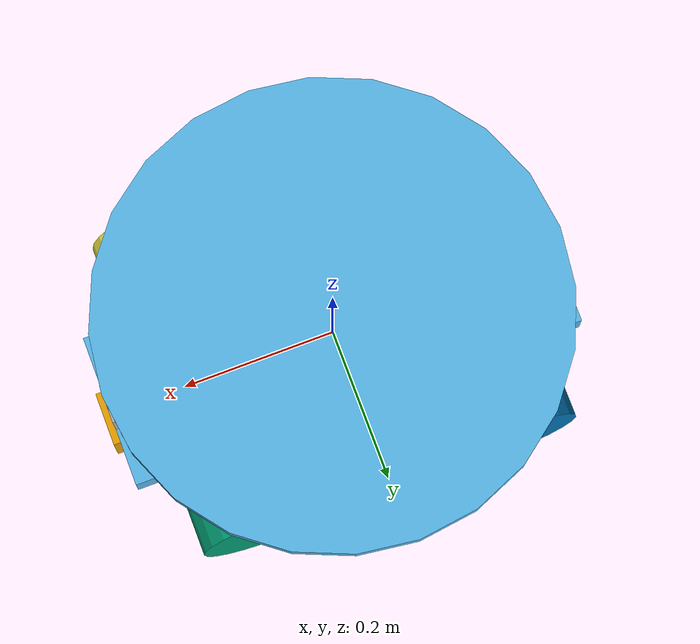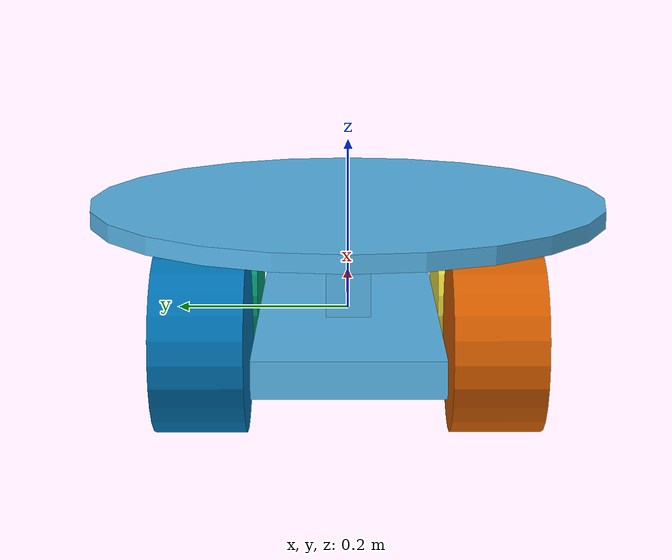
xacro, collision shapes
<?xml version='1.0'?>

<robot name="my_robot" xmlns:xacro="http://ros.org/wiki/xacro">

	<xacro:include filename="$(find my_robot)/urdf/my_robot.gazebo"/>

  <link name="robot_footprint"></link>

  <joint name="robot_footprint_joint" type="fixed">
    <origin xyz="0 0 0" rpy="0 0 0" />
    <parent link="robot_footprint"/>
    <child link="chassis" />
  </joint>
  <link name='chassis'>
    <pose>0 0 0.1 0 0 0</pose>
    <inertial>
      <mass value="35.0"/>
      <origin xyz="0.0 0 0" rpy=" 0 0 0"/>
      <inertia
          ixx="0.1" ixy="0" ixz="0"
          iyy="0.1" iyz="0"
          izz="0.1"
      />
    </inertial>
    <collision name='chassis_collision'>
      <origin xyz="0 0 0" rpy=" 0 0 0"/>
      <geometry>
        <box size="0.6 0.2 0.04"/>
      </geometry>
    </collision>
    <visual name='chassis_visual'>
      <origin xyz="0 0 0" rpy=" 0 0 0"/>
      <geometry>
        <box size="0.6 0.2 0.04"/>
      </geometry>
    </visual>
    <collision name='chassis_top_collision'>
      <origin xyz="0 0 0.065" rpy=" 0 0 0"/>
      <geometry>
        <box size="0.25 0.05 0.09"/>
      </geometry>
    </collision>
    <visual name='chassis_top_visual'>
      <origin xyz="0 0 0.065" rpy=" 0 0 0"/>
      <geometry>
        <box size="0.25 0.05 0.09"/>
      </geometry>
    </visual>
  </link>

	<!-- wheels -->
  <joint type="continuous" name="left_front_wheel_hinge">
    <origin xyz="0.15 0.16 0" rpy="0 0 0"/>
    <child link="left_front_wheel"/>
    <parent link="chassis"/>
    <axis xyz="0 1 0" rpy="0 0 0"/>
    <limit effort="10000" velocity="1000"/>
    <dynamics damping="1.0" friction="1.0"/>
  </joint>
  <transmission name="left_front_wheel_trans">
    <type>transmission_interface/SimpleTransmission</type>
    <joint name="left_front_wheel_hinge">
      <hardwareInterface>hardware_interface/EffortJointInterface</hardwareInterface>
		</joint>
    <actuator name="left_front_wheel_actuator">
      <hardwareInterface>EffortJointInterface</hardwareInterface>
      <mechanicalReduction>1</mechanicalReduction>
      </actuator>
  </transmission>
	<link name='left_front_wheel'>
    <collision name='left_front_wheel_collision'>
      <origin xyz="0 0 0" rpy=" 0 1.5707 1.5707"/>
      <geometry>
        <cylinder radius="0.1" length="0.1"/>
      </geometry>
    </collision>
    <visual name='left_front_wheel_visual'>
      <origin xyz="0 -0.02 0" rpy=" 0 1.5707 0"/>
      <geometry>
				<mesh filename="package://my_robot/meshes/mecanum.dae" scale="1 1 1"/>
      </geometry>
    </visual>
    <inertial>
      <mass value="10.0"/>
      <origin xyz="0.0 0 0" rpy=" 0 0 0"/>
      <inertia
          ixx="0.1" ixy="0" ixz="0"
          iyy="0.1" iyz="0"
          izz="0.1"
      />
    </inertial>
	</link>

  <joint type="continuous" name="right_front_wheel_hinge">
    <origin xyz="0.15 -0.16 0" rpy="0 0 0"/>
    <child link="right_front_wheel"/>
    <parent link="chassis"/>
    <axis xyz="0 1 0" rpy="0 0 0"/>
    <limit effort="10000" velocity="1000"/>
    <dynamics damping="1.0" friction="1.0"/>
  </joint>
  <transmission name="right_front_wheel_trans">
    <type>transmission_interface/SimpleTransmission</type>
    <joint name="right_front_wheel_hinge">
      <hardwareInterface>hardware_interface/EffortJointInterface</hardwareInterface>
		</joint>
    <actuator name="right_front_wheel_actuator">
      <hardwareInterface>EffortJointInterface</hardwareInterface>
      <mechanicalReduction>1</mechanicalReduction>
      </actuator>
  </transmission>
	<link name='right_front_wheel'>
    <collision name='right_front_wheel_collision'>
      <origin xyz="0 0 0" rpy=" 0 1.5707 1.5707"/>
      <geometry>
        <cylinder radius="0.1" length="0.1"/>
      </geometry>
    </collision>
    <visual name='right_front_wheel_visual'>
      <origin xyz="0 -0.02 0" rpy=" 0 -1.5707 0"/>
      <geometry>
				<mesh filename="package://my_robot/meshes/mecanum0.stl" scale="1 1 1"/>
      </geometry>
    </visual>
    <inertial>
      <mass value="10.0"/>
      <origin xyz="0.0 0 0" rpy=" 0 0 0"/>
      <inertia
          ixx="0.1" ixy="0" ixz="0"
          iyy="0.1" iyz="0"
          izz="0.1"
      />
    </inertial>
	</link>

  <joint type="continuous" name="left_back_wheel_hinge">
    <origin xyz="-0.15 0.16 0" rpy="0 0 0"/>
    <child link="left_back_wheel"/>
    <parent link="chassis"/>
    <axis xyz="0 1 0" rpy="0 0 0"/>
    <limit effort="10000" velocity="1000"/>
    <dynamics damping="1.0" friction="1.0"/>
  </joint>
  <transmission name="left_back_wheel_trans">
    <type>transmission_interface/SimpleTransmission</type>
    <joint name="left_back_wheel_hinge">
      <hardwareInterface>hardware_interface/EffortJointInterface</hardwareInterface>
		</joint>
    <actuator name="left_back_wheel_actuator">
      <hardwareInterface>EffortJointInterface</hardwareInterface>
      <mechanicalReduction>1</mechanicalReduction>
      </actuator>
  </transmission>
	<link name='left_back_wheel'>
    <collision name='left_back_wheel_collision'>
      <origin xyz="0 0 0" rpy=" 0 1.5707 1.5707"/>
      <geometry>
        <cylinder radius="0.1" length="0.1"/>
      </geometry>
    </collision>
    <visual name='left_back_wheel_visual'>
      <origin xyz="0 -0.02 0" rpy=" 0 1.5707 0"/>
      <geometry>
				<mesh filename="package://my_robot/meshes/mecanum0.stl" scale="1 1 1"/>
      </geometry>
    </visual>
    <inertial>
      <mass value="10.0"/>
      <origin xyz="0.0 0 0" rpy=" 0 0 0"/>
      <inertia
          ixx="0.1" ixy="0" ixz="0"
          iyy="0.1" iyz="0"
          izz="0.1"
      />
    </inertial>
	</link>

  <joint type="continuous" name="right_back_wheel_hinge">
    <origin xyz="-0.15 -0.16 0" rpy="0 0 0"/>
    <child link="right_back_wheel"/>
    <parent link="chassis"/>
    <axis xyz="0 1 0" rpy="0 0 0"/>
    <limit effort="10000" velocity="1000"/>
    <dynamics damping="1.0" friction="1.0"/>
  </joint>
  <transmission name="right_back_wheel_trans">
    <type>transmission_interface/SimpleTransmission</type>
    <joint name="right_back_wheel_hinge">
      <hardwareInterface>hardware_interface/EffortJointInterface</hardwareInterface>
		</joint>
    <actuator name="right_back_wheel_actuator">
      <hardwareInterface>EffortJointInterface</hardwareInterface>
      <mechanicalReduction>1</mechanicalReduction>
      </actuator>
  </transmission>
	<link name='right_back_wheel'>
    <collision name='right_back_wheel_collision'>
      <origin xyz="0 0 0" rpy=" 0 1.5707 1.5707"/>
      <geometry>
        <cylinder radius="0.1" length="0.1"/>
      </geometry>
    </collision>
    <visual name='right_back_wheel_visual'>
      <origin xyz="0 -0.02 0" rpy=" 0 -1.5707 0"/>
      <geometry>
				<mesh filename="package://my_robot/meshes/mecanum0.stl" scale="1 1 1"/>
      </geometry>
    </visual>
    <inertial>
      <mass value="10.0"/>
      <origin xyz="0.0 0 0" rpy=" 0 0 0"/>
      <inertia
          ixx="0.1" ixy="0" ixz="0"
          iyy="0.1" iyz="0"
          izz="0.1"
      />
    </inertial>
	</link>

	<!-- RGBD CAMERA SENSOR -->
  <joint type="fixed" name="camera_joint">
    <origin xyz="0.275 0.0 0.045" rpy="0 0 0"/>
    <child link="camera"/>
    <parent link="chassis"/>
    <axis xyz="0 1 0" rpy="0 0 0"/>
  </joint>
	<link name='camera'>
    <collision name='camera_collision'>
      <origin xyz="0 0 0" rpy=" 0 0 0"/>
      <geometry>
        <box size="0.05 0.05 0.05"/>
      </geometry>
    </collision>
    <visual name='camera_visual'>
      <origin xyz="0 0 0" rpy=" 0 0 0"/>
      <geometry>
        <box size="0.05 0.05 0.05"/>
      </geometry>
    </visual>
    <inertial>
      <mass value="0.1"/>
      <origin xyz="0.0 0 0" rpy=" 0 0 0"/>
      <inertia
          ixx="1e-6" ixy="0" ixz="0"
          iyy="0.000001" iyz="0"
          izz="0.000001"
      />
    </inertial>
	</link>

  <joint name="camera_optical_joint" type="fixed">
    <origin xyz="0 0 0" rpy="-1.5707 0 -1.5707"/>
    <parent link="camera"/>
    <child link="camera_optical"/>
    <axis xyz="0 0 0" rpy="0 0 0"/>
  </joint>
  <link name="camera_optical">
    <collision name='camera_optical_collision'>
      <origin xyz="0 0 0" rpy=" 0 0 0"/>
      <geometry>
        <box size="0.05 0.05 0.05"/>
      </geometry>
    </collision>
    <visual name='camera_optical_visual'>
      <origin xyz="0 0 0" rpy=" 0 0 0"/>
      <geometry>
        <box size="0.05 0.05 0.05"/>
      </geometry>
    </visual>
    <inertial>
      <mass value="0.1"/>
      <origin xyz="0.0 0 0" rpy=" 0 0 0"/>
      <inertia
          ixx="1e-6" ixy="0" ixz="0"
          iyy="0.000001" iyz="0"
          izz="0.000001"
      />
    </inertial>
  </link>

	<!-- LASER SENSOR -->
  <joint type="fixed" name="hokuyo_joint">
    <origin xyz="0.275 0 -0.055" rpy="0 0 0"/>
    <child link="hokuyo"/>
    <parent link="chassis"/>
    <axis xyz="0 1 0" rpy="0 0 0"/>
  </joint>
	<link name='hokuyo'>
    <collision name='hokuyo_collision'>
      <origin xyz="0 0 0" rpy=" 0 0 0"/>
      <geometry>
        <box size="0.07 0.07 0.07"/>
      </geometry>
    </collision>
    <visual name='hokuyo_visual'>
      <origin xyz="0 0 0" rpy=" 3.14159 0 0"/>
      <geometry>
				<mesh filename="package://my_robot/meshes/hokuyo.dae" />
      </geometry>
    </visual>
    <inertial>
      <mass value="1e-5"/>
      <origin xyz="0.0 0 0" rpy=" 0 0 0"/>
      <inertia
          ixx="1e-6" ixy="0" ixz="0"
          iyy="0.000001" iyz="0"
          izz="0.000001"
      />
    </inertial>
	</link>

	<!-- plate -->
  <joint type="fixed" name="plate_hinge">
    <origin xyz="0 0 0.12" rpy="0 0 0"/>
    <child link="plate"/>
    <parent link="chassis"/>
    <axis xyz="0 1 0" rpy="0 0 0"/>
  </joint>
	<link name='plate'>
    <collision name='plate_collision'>
      <origin xyz="0 0 0" rpy=" 0 0 0"/>
      <geometry>
        <cylinder radius="0.3" length="0.02"/>
      </geometry>
    </collision>
    <visual name='plate_visual'>
      <origin xyz="0 0 0" rpy=" 0 0 0"/>
      <geometry>
        <cylinder radius="0.3" length="0.02"/>
      </geometry>
    </visual>
    <inertial>
      <mass value="30.0"/>
      <origin xyz="0.0 0 0" rpy=" 0 0 0"/>
      <inertia
          ixx="0.1" ixy="0" ixz="0"
          iyy="0.1" iyz="0"
          izz="0.1"
      />
    </inertial>
	</link>
</robot>
